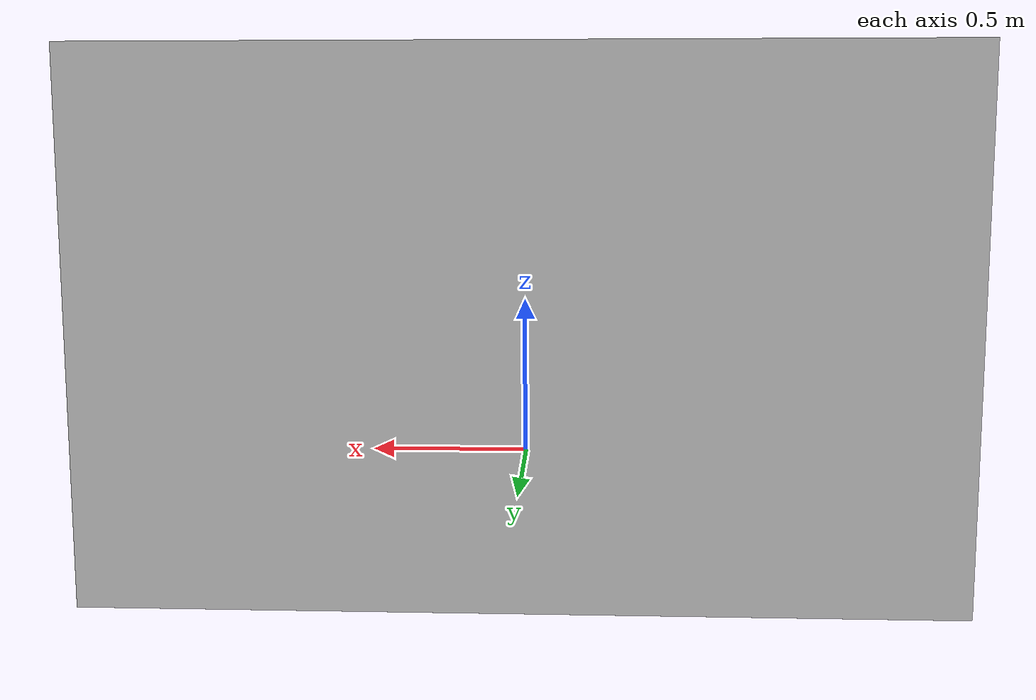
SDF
<?xml version="1.0" ?>
<sdf version="1.6">
  <model name="lab">
    <static>true</static>
    <link name="link">
      <collision name="collision">
        <geometry>
          <mesh>
            <uri>model://lab/meshes/lab.dae</uri>
          </mesh>
        </geometry>
      </collision>
      <visual name="visual">
        <geometry>
          <mesh>
            <uri>model://lab/meshes/lab.dae</uri>
          </mesh>
        </geometry>
      </visual>
    </link>
  </model>
</sdf>
